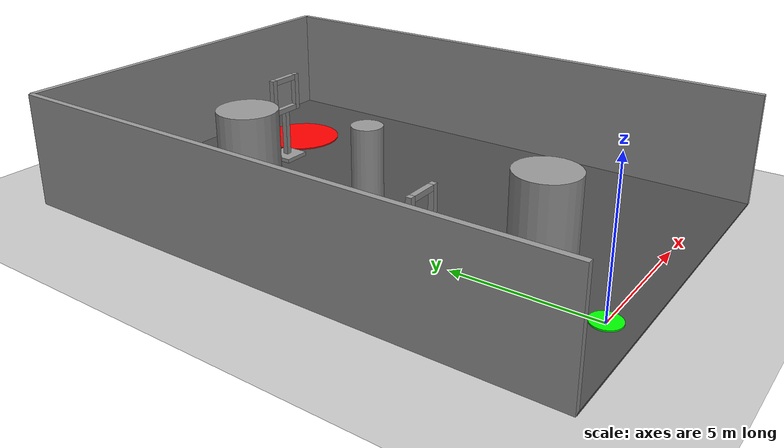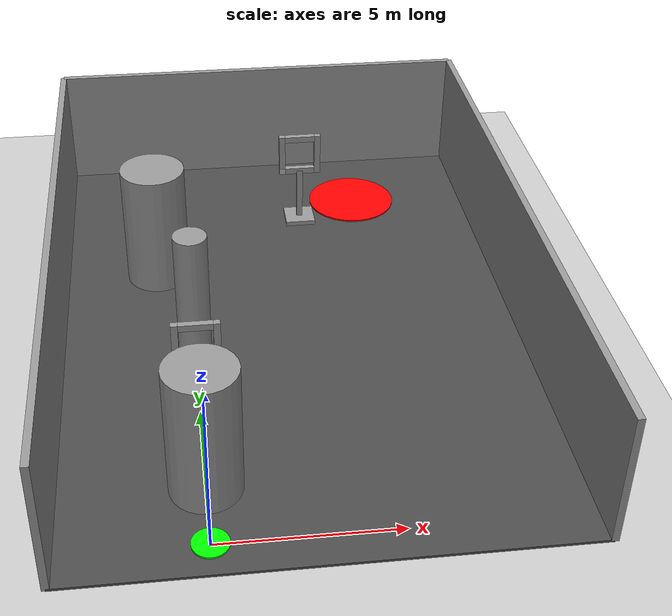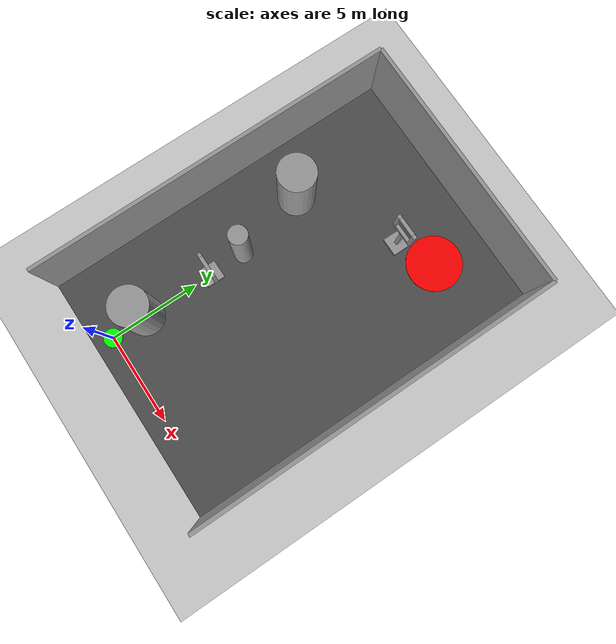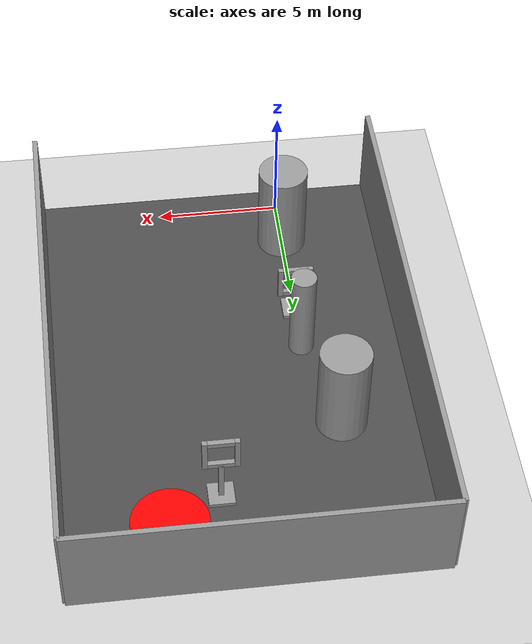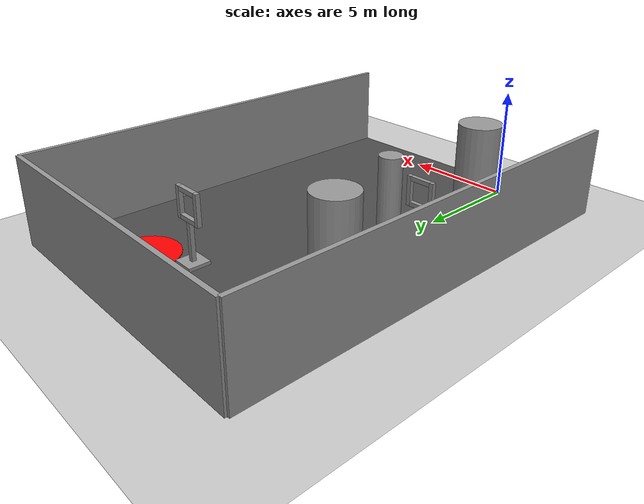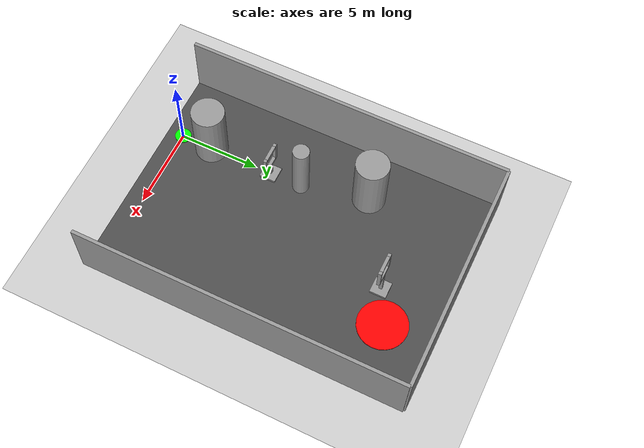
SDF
<?xml version="1.0" ?>
<sdf version="1.4">
  <world name="default">
	  <scene>
	    <shadows>0</shadows>
    </scene>
    <physics type="ode">
      <gravity>0 0 -9.81</gravity>
      <ode>
        <solver>
          <type>quick</type>
          <iters>20</iters>
          <sor>1.0</sor>
        </solver>
        <constraints>
          <cfm>0.0</cfm>
          <erp>0.2</erp>
          <contact_max_correcting_vel>100.0</contact_max_correcting_vel>
          <contact_surface_layer>0.0</contact_surface_layer>
        </constraints>
      </ode>
      <real_time_update_rate>1000</real_time_update_rate>
      <max_step_size>0.001</max_step_size>
    </physics>

    <!-- A global light source -->
    <include>
      <uri>model://sun</uri>
    </include>

    <!-- A ground plane -->
    <include>
      <uri>model://ground_plane</uri>
    </include>
    <!-- Blue floor -->
    <include>
      <uri>model://floor</uri>
      <pose> 3 9 0.0 0.0 0.0 0.0</pose>
    </include>

    <!-- Platforms -->
		<include>
      <uri>model://start_platform</uri>
			<name>start_platform</name>
      <pose> 0.0 0.0 0.0 0.0 0.0 0.0</pose>
    </include>

		<include>
      <uri>model://end_platform</uri>
			<name>end_platform</name>
      <pose> 6.0 16.0 0.0 0.0 0.0 0.0</pose>
    </include>

    <!-- External walls -->

		<include>
      <uri>model://extwall</uri>
			<name>extwall_left</name>
      <pose>-4 9.0 0.0 0 0.0 -1.57</pose>
    </include>

    <include>
      <uri>model://extwall</uri>
			<name>extwall_right</name>
      <pose>10 9.0 0.0 0 0.0 -1.57</pose>
    </include>

    <include>
      <uri>model://extwall_2</uri>
			<name>extwall_front</name>
      <pose>3 19.0 0.0 0 0.0 0.0</pose>
    </include>

    <!-- Solid obstacles -->

    <include>
      <uri>model://solobst_small</uri>
			<name>solobs_s_1</name>
      <pose>0.0 8.0 0.0 0 0.0 0</pose>
    </include>

    <include>
      <uri>model://solobst_big</uri>
			<name>solobs_b_1</name>
      <pose>0.0 2.0 0.0 0 0.0 0</pose>
    </include>

    <include>
      <uri>model://solobst_big</uri>
			<name>solobs_b_2</name>
      <pose>-1.0 12.0 0.0 0 0.0 0</pose>
    </include>

    <!--Empty obstacles with AR marker -->

		<include>
      <uri>model://empobst_1</uri>
			<name>empobst_1</name>
      <pose>0.0 6.0 0 0.0 0.0 -1.57</pose>
    </include>

		<include>
      <uri>model://empobst_2</uri>
			<name>empobst_2</name>
      <pose>4.0 15.0 0 0.0 0.0 -1.57</pose>
    </include>

  </world>
</sdf>

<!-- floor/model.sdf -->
<sdf version="1.5">
  <model name="asphalt_plane">
    <static>true</static>
    <link name="link">
      <collision name="collision">
        <geometry>
          <box>
            <size>200 200 .1</size>
          </box>
        </geometry>
      </collision>
      <visual name="visual">
        <cast_shadows>false</cast_shadows>
        <geometry>
          <box>
            <size>14 20 .1</size>
          </box>
        </geometry>
        <material>
          <script>
            <uri>model://floor/materials/scripts</uri>
            <uri>model://floor/materials/textures</uri>
            <name>vrc/asphalt</name>
          </script>
        </material>
      </visual>
    </link>
  </model>
</sdf>

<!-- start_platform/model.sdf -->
<sdf version='1.7'>
  <model name='start_platform'>
    <static>true</static>
    <link name='link_0'>
      <pose>0 0 0.05 0 -0 0</pose>
      <visual name='visual'>
        <pose>0 0 0 0 -0 0</pose>
        <geometry>
          <cylinder>
            <radius>0.5</radius>
            <length>0.1</length>
          </cylinder>
        </geometry>
        <material>
          <lighting>1</lighting>
          <shader type='pixel'>
            <normal_map>__default__</normal_map>
          </shader>
          <ambient>0 1 0 1</ambient>
          <diffuse>0 1 0 1</diffuse>
          <specular>0.01 0.01 0.01 1</specular>
          <emissive>0 0 0 1</emissive>
        </material>
        <transparency>0</transparency>
        <cast_shadows>1</cast_shadows>
      </visual>
      <collision name='collision'>
        <laser_retro>0</laser_retro>
        <max_contacts>10</max_contacts>
        <pose>0 0 0 0 -0 0</pose>
        <geometry>
          <cylinder>
            <radius>1.5</radius>
            <length>0.1</length>
          </cylinder>
        </geometry>
        <surface>
          <friction>
            <ode>
              <mu>1</mu>
              <mu2>1</mu2>
              <fdir1>0 0 0</fdir1>
              <slip1>0</slip1>
              <slip2>0</slip2>
            </ode>
            <torsional>
              <coefficient>1</coefficient>
              <patch_radius>0</patch_radius>
              <surface_radius>0</surface_radius>
              <use_patch_radius>1</use_patch_radius>
              <ode>
                <slip>0</slip>
              </ode>
            </torsional>
          </friction>
          <bounce>
            <restitution_coefficient>0</restitution_coefficient>
            <threshold>1e+06</threshold>
          </bounce>
          <contact>
            <collide_without_contact>0</collide_without_contact>
            <collide_without_contact_bitmask>1</collide_without_contact_bitmask>
            <collide_bitmask>1</collide_bitmask>
            <ode>
              <soft_cfm>0</soft_cfm>
              <soft_erp>0.2</soft_erp>
              <kp>1e+13</kp>
              <kd>1</kd>
              <max_vel>0.01</max_vel>
              <min_depth>0</min_depth>
            </ode>
            <bullet>
              <split_impulse>1</split_impulse>
              <split_impulse_penetration_threshold>-0.01</split_impulse_penetration_threshold>
              <soft_cfm>0</soft_cfm>
              <soft_erp>0.2</soft_erp>
              <kp>1e+13</kp>
              <kd>1</kd>
            </bullet>
          </contact>
        </surface>
      </collision>
    </link>
  </model>
</sdf>

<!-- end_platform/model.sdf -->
<sdf version='1.7'>
  <model name='end_platform'>
    <static>true</static>
    <link name='link_0'>
      <pose>0 0 0.05 0 -0 0</pose>
      <visual name='visual'>
        <pose>0 0 0 0 -0 0</pose>
        <geometry>
          <cylinder>
            <radius>1.5</radius>
            <length>0.1</length>
          </cylinder>
        </geometry>
        <material>
          <lighting>1</lighting>
          <shader type='pixel'>
            <normal_map>__default__</normal_map>
          </shader>
          <ambient>1 0 0 1</ambient>
          <diffuse>1 0 0 1</diffuse>
          <specular>0.01 0.01 0.01 1</specular>
          <emissive>0 0 0 1</emissive>
        </material>
        <transparency>0</transparency>
        <cast_shadows>1</cast_shadows>
      </visual>
      <collision name='collision'>
        <laser_retro>0</laser_retro>
        <max_contacts>10</max_contacts>
        <pose>0 0 0 0 -0 0</pose>
        <geometry>
          <cylinder>
            <radius>1.5</radius>
            <length>0.1</length>
          </cylinder>
        </geometry>
        <surface>
          <friction>
            <ode>
              <mu>1</mu>
              <mu2>1</mu2>
              <fdir1>0 0 0</fdir1>
              <slip1>0</slip1>
              <slip2>0</slip2>
            </ode>
            <torsional>
              <coefficient>1</coefficient>
              <patch_radius>0</patch_radius>
              <surface_radius>0</surface_radius>
              <use_patch_radius>1</use_patch_radius>
              <ode>
                <slip>0</slip>
              </ode>
            </torsional>
          </friction>
          <bounce>
            <restitution_coefficient>0</restitution_coefficient>
            <threshold>1e+06</threshold>
          </bounce>
          <contact>
            <collide_without_contact>0</collide_without_contact>
            <collide_without_contact_bitmask>1</collide_without_contact_bitmask>
            <collide_bitmask>1</collide_bitmask>
            <ode>
              <soft_cfm>0</soft_cfm>
              <soft_erp>0.2</soft_erp>
              <kp>1e+13</kp>
              <kd>1</kd>
              <max_vel>0.01</max_vel>
              <min_depth>0</min_depth>
            </ode>
            <bullet>
              <split_impulse>1</split_impulse>
              <split_impulse_penetration_threshold>-0.01</split_impulse_penetration_threshold>
              <soft_cfm>0</soft_cfm>
              <soft_erp>0.2</soft_erp>
              <kp>1e+13</kp>
              <kd>1</kd>
            </bullet>
          </contact>
        </surface>
      </collision>
    </link>
  </model>
</sdf>

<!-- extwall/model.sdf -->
<sdf version="1.5">
  <model name="grey_wall">
    <static>true</static>
    <link name="link">
      <pose>0 0 2 0 0 0</pose>
      <collision name="collision">
        <geometry>
          <box>
            <size>20.0 0.2 4</size>
          </box>
        </geometry>
      </collision>
      <visual name="visual">
        <cast_shadows>false</cast_shadows>
        <geometry>
          <box>
            <size>20.0 0.2 4</size>
          </box>
        </geometry>
        <material>
          <script>
            <uri>model://extwall/materials/scripts</uri>
            <uri>model://extwall/materials/textures</uri>
            <name>vrc/grey_wall</name>
          </script>
        </material>
      </visual>
    </link>
  </model>
</sdf>

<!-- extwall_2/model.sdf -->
<sdf version="1.5">
  <model name="grey_wall">
    <static>true</static>
    <link name="link">
      <pose>0 0 2 0 0 0</pose>
      <collision name="collision">
        <geometry>
          <box>
            <size>14 0.2 4</size>
          </box>
        </geometry>
      </collision>
      <visual name="visual">
        <cast_shadows>false</cast_shadows>
        <geometry>
          <box>
            <size>14 0.2 4</size>
          </box>
        </geometry>
        <material>
          <script>
            <uri>model://extwall/materials/scripts</uri>
            <uri>model://extwall/materials/textures</uri>
            <name>vrc/grey_wall</name>
          </script>
        </material>
      </visual>
    </link>
  </model>
</sdf>

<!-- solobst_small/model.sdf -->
<sdf version='1.7'>
  <model name='solobst_small'>
    <static>true</static>
    <link name='link_0'>
      <pose>0 -0 2 0 -0 0</pose>
      <visual name='visual'>
        <pose>0 0 0 0 -0 0</pose>
        <geometry>
          <cylinder>
            <radius>0.5</radius>
            <length>4</length>
          </cylinder>
        </geometry>
        <material>
          <lighting>1</lighting>
          <script>
            <uri>file://media/materials/scripts/gazebo.material</uri>
            <name>Gazebo/Grey</name>
          </script>
          <shader type='pixel'>
            <normal_map>__default__</normal_map>
          </shader>
          <ambient>0.3 0.3 0.3 1</ambient>
          <diffuse>0.7 0.7 0.7 1</diffuse>
          <specular>0.01 0.01 0.01 1</specular>
          <emissive>0 0 0 1</emissive>
        </material>
        <transparency>0</transparency>
        <cast_shadows>1</cast_shadows>
      </visual>
      <collision name='collision'>
        <laser_retro>0</laser_retro>
        <max_contacts>10</max_contacts>
        <pose>0 0 0 0 -0 0</pose>
        <geometry>
          <cylinder>
            <radius>0.5</radius>
            <length>4</length>
          </cylinder>
        </geometry>
        <surface>
          <friction>
            <ode>
              <mu>1</mu>
              <mu2>1</mu2>
              <fdir1>0 0 0</fdir1>
              <slip1>0</slip1>
              <slip2>0</slip2>
            </ode>
            <torsional>
              <coefficient>1</coefficient>
              <patch_radius>0</patch_radius>
              <surface_radius>0</surface_radius>
              <use_patch_radius>1</use_patch_radius>
              <ode>
                <slip>0</slip>
              </ode>
            </torsional>
          </friction>
          <bounce>
            <restitution_coefficient>0</restitution_coefficient>
            <threshold>1e+06</threshold>
          </bounce>
          <contact>
            <collide_without_contact>0</collide_without_contact>
            <collide_without_contact_bitmask>1</collide_without_contact_bitmask>
            <collide_bitmask>1</collide_bitmask>
            <ode>
              <soft_cfm>0</soft_cfm>
              <soft_erp>0.2</soft_erp>
              <kp>1e+13</kp>
              <kd>1</kd>
              <max_vel>0.01</max_vel>
              <min_depth>0</min_depth>
            </ode>
            <bullet>
              <split_impulse>1</split_impulse>
              <split_impulse_penetration_threshold>-0.01</split_impulse_penetration_threshold>
              <soft_cfm>0</soft_cfm>
              <soft_erp>0.2</soft_erp>
              <kp>1e+13</kp>
              <kd>1</kd>
            </bullet>
          </contact>
        </surface>
      </collision>
    </link>
  </model>
</sdf>

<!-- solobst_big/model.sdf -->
<sdf version='1.7'>
  <model name='solobst_big'>
    <static>true</static>
    <link name='link_0'>
      <pose>0 -0 2 0 -0 0</pose>
      <visual name='visual'>
        <pose>0 0 0 0 -0 0</pose>
        <geometry>
          <cylinder>
            <radius>1.0</radius>
            <length>4</length>
          </cylinder>
        </geometry>
        <material>
          <lighting>1</lighting>
          <script>
            <uri>file://media/materials/scripts/gazebo.material</uri>
            <name>Gazebo/Grey</name>
          </script>
          <shader type='pixel'>
            <normal_map>__default__</normal_map>
          </shader>
          <ambient>0.3 0.3 0.3 1</ambient>
          <diffuse>0.7 0.7 0.7 1</diffuse>
          <specular>0.01 0.01 0.01 1</specular>
          <emissive>0 0 0 1</emissive>
        </material>
        <transparency>0</transparency>
        <cast_shadows>1</cast_shadows>
      </visual>
      <collision name='collision'>
        <laser_retro>0</laser_retro>
        <max_contacts>10</max_contacts>
        <pose>0 0 0 0 -0 0</pose>
        <geometry>
          <cylinder>
            <radius>1.0</radius>
            <length>4</length>
          </cylinder>
        </geometry>
        <surface>
          <friction>
            <ode>
              <mu>1</mu>
              <mu2>1</mu2>
              <fdir1>0 0 0</fdir1>
              <slip1>0</slip1>
              <slip2>0</slip2>
            </ode>
            <torsional>
              <coefficient>1</coefficient>
              <patch_radius>0</patch_radius>
              <surface_radius>0</surface_radius>
              <use_patch_radius>1</use_patch_radius>
              <ode>
                <slip>0</slip>
              </ode>
            </torsional>
          </friction>
          <bounce>
            <restitution_coefficient>0</restitution_coefficient>
            <threshold>1e+06</threshold>
          </bounce>
          <contact>
            <collide_without_contact>0</collide_without_contact>
            <collide_without_contact_bitmask>1</collide_without_contact_bitmask>
            <collide_bitmask>1</collide_bitmask>
            <ode>
              <soft_cfm>0</soft_cfm>
              <soft_erp>0.2</soft_erp>
              <kp>1e+13</kp>
              <kd>1</kd>
              <max_vel>0.01</max_vel>
              <min_depth>0</min_depth>
            </ode>
            <bullet>
              <split_impulse>1</split_impulse>
              <split_impulse_penetration_threshold>-0.01</split_impulse_penetration_threshold>
              <soft_cfm>0</soft_cfm>
              <soft_erp>0.2</soft_erp>
              <kp>1e+13</kp>
              <kd>1</kd>
            </bullet>
          </contact>
        </surface>
      </collision>
    </link>
  </model>
</sdf>

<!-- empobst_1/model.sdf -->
<sdf version='1.7'>
  <model name='empobst_1'>
    <static>true</static>

    <include>
      <uri>model://marker26_8cm_massless</uri>
      <pose>0.1 -0.6 1.1 0.0 1.5707 3.141592</pose>
    </include>

    <joint name='link_1_marker_joint' type='fixed'>
      <parent>link_1</parent>
      <child>marker26_8cm_massless::link</child>
      <pose>0 0 0 0 0 0</pose>
      <physics>
        <ode>
          <limit>
            <cfm>0</cfm>
            <erp>0.2</erp>
          </limit>
          <suspension>
            <cfm>0</cfm>
            <erp>0.2</erp>
          </suspension>
        </ode>
      </physics>
    </joint>

    <link name='link_base'>
      <inertial>
        <mass>100</mass>
        <inertia>
          <ixx>0.166667</ixx>
          <ixy>0</ixy>
          <ixz>0</ixz>
          <iyy>0.166667</iyy>
          <iyz>0</iyz>
          <izz>0.166667</izz>
        </inertia>
        <pose>0 0 0 0 -0 0</pose>
      </inertial>
      <pose>0 0 0.1 0 -0 0</pose>
      <gravity>1</gravity>
      <self_collide>0</self_collide>
      <kinematic>0</kinematic>
      <enable_wind>0</enable_wind>
      <visual name='visual'>
        <pose>0 0 0 0 -0 0</pose>
        <geometry>
          <box>
            <size>1 1 0.2</size>
          </box>
        </geometry>
        <material>
          <lighting>1</lighting>
          <script>
            <uri>file://media/materials/scripts/gazebo.material</uri>
            <name>Gazebo/Grey</name>
          </script>
          <shader type='pixel'>
            <normal_map>__default__</normal_map>
          </shader>
          <ambient>0.3 0.3 0.3 1</ambient>
          <diffuse>0.7 0.7 0.7 1</diffuse>
          <specular>0.01 0.01 0.01 1</specular>
          <emissive>0 0 0 1</emissive>
        </material>
        <transparency>0</transparency>
        <cast_shadows>1</cast_shadows>
      </visual>
      <collision name='collision'>
        <laser_retro>0</laser_retro>
        <max_contacts>10</max_contacts>
        <pose>0 0 0 0 -0 0</pose>
        <geometry>
          <box>
            <size>1 1 0.2</size>
          </box>
        </geometry>
        <surface>
          <friction>
            <ode>
              <mu>1</mu>
              <mu2>1</mu2>
              <fdir1>0 0 0</fdir1>
              <slip1>0</slip1>
              <slip2>0</slip2>
            </ode>
            <torsional>
              <coefficient>1</coefficient>
              <patch_radius>0</patch_radius>
              <surface_radius>0</surface_radius>
              <use_patch_radius>1</use_patch_radius>
              <ode>
                <slip>0</slip>
              </ode>
            </torsional>
          </friction>
          <bounce>
            <restitution_coefficient>0</restitution_coefficient>
            <threshold>1e+06</threshold>
          </bounce>
          <contact>
            <collide_without_contact>0</collide_without_contact>
            <collide_without_contact_bitmask>1</collide_without_contact_bitmask>
            <collide_bitmask>1</collide_bitmask>
            <ode>
              <soft_cfm>0</soft_cfm>
              <soft_erp>0.2</soft_erp>
              <kp>1e+13</kp>
              <kd>1</kd>
              <max_vel>0.01</max_vel>
              <min_depth>0</min_depth>
            </ode>
            <bullet>
              <split_impulse>1</split_impulse>
              <split_impulse_penetration_threshold>-0.01</split_impulse_penetration_threshold>
              <soft_cfm>0</soft_cfm>
              <soft_erp>0.2</soft_erp>
              <kp>1e+13</kp>
              <kd>1</kd>
            </bullet>
          </contact>
        </surface>
      </collision>
    </link>

    <link name='link_0'>
      <pose>0 0 0.5 0 -0 0</pose>
      <visual name='visual'>
        <pose>0 0 0 0 -0 0</pose>
        <geometry>
          <box>
            <size>0.2 0.2 1</size>
          </box>
        </geometry>
        <material>
          <lighting>1</lighting>
          <script>
            <uri>file://media/materials/scripts/gazebo.material</uri>
            <name>Gazebo/Grey</name>
          </script>
          <shader type='pixel'>
            <normal_map>__default__</normal_map>
          </shader>
          <ambient>0.3 0.3 0.3 1</ambient>
          <diffuse>0.7 0.7 0.7 1</diffuse>
          <specular>0.01 0.01 0.01 1</specular>
          <emissive>0 0 0 1</emissive>
        </material>
        <transparency>0</transparency>
        <cast_shadows>1</cast_shadows>
      </visual>
      <collision name='collision'>
        <laser_retro>0</laser_retro>
        <max_contacts>10</max_contacts>
        <pose>0 0 0 0 -0 0</pose>
        <geometry>
          <box>
            <size>0.2 0.2 1</size>
          </box>
        </geometry>
        <surface>
          <friction>
            <ode>
              <mu>1</mu>
              <mu2>1</mu2>
              <fdir1>0 0 0</fdir1>
              <slip1>0</slip1>
              <slip2>0</slip2>
            </ode>
            <torsional>
              <coefficient>1</coefficient>
              <patch_radius>0</patch_radius>
              <surface_radius>0</surface_radius>
              <use_patch_radius>1</use_patch_radius>
              <ode>
                <slip>0</slip>
              </ode>
            </torsional>
          </friction>
          <bounce>
            <restitution_coefficient>0</restitution_coefficient>
            <threshold>1e+06</threshold>
          </bounce>
          <contact>
            <collide_without_contact>0</collide_without_contact>
            <collide_without_contact_bitmask>1</collide_without_contact_bitmask>
            <collide_bitmask>1</collide_bitmask>
            <ode>
              <soft_cfm>0</soft_cfm>
              <soft_erp>0.2</soft_erp>
              <kp>1e+13</kp>
              <kd>1</kd>
              <max_vel>0.01</max_vel>
              <min_depth>0</min_depth>
            </ode>
            <bullet>
              <split_impulse>1</split_impulse>
              <split_impulse_penetration_threshold>-0.01</split_impulse_penetration_threshold>
              <soft_cfm>0</soft_cfm>
              <soft_erp>0.2</soft_erp>
              <kp>1e+13</kp>
              <kd>1</kd>
            </bullet>
          </contact>
        </surface>
      </collision>
    </link>

    <link name='link_1'>
      <pose>0 0 1.1 0 -0 0</pose>
      <visual name='visual'>
        <pose>0 0 0 0 -0 0</pose>
        <geometry>
          <box>
            <size>0.2 1 0.2</size>
          </box>
        </geometry>
        <material>
          <lighting>1</lighting>
          <script>
            <uri>file://media/materials/scripts/gazebo.material</uri>
            <name>Gazebo/Grey</name>
          </script>
          <shader type='pixel'>
            <normal_map>__default__</normal_map>
          </shader>
          <ambient>0.3 0.3 0.3 1</ambient>
          <diffuse>0.7 0.7 0.7 1</diffuse>
          <specular>0.01 0.01 0.01 1</specular>
          <emissive>0 0 0 1</emissive>
        </material>
        <transparency>0</transparency>
        <cast_shadows>1</cast_shadows>
      </visual>
      <collision name='collision'>
        <laser_retro>0</laser_retro>
        <max_contacts>10</max_contacts>
        <pose>0 0 0 0 -0 0</pose>
        <geometry>
          <box>
            <size>0.2 1 0.2</size>
          </box>
        </geometry>
        <surface>
          <friction>
            <ode>
              <mu>1</mu>
              <mu2>1</mu2>
              <fdir1>0 0 0</fdir1>
              <slip1>0</slip1>
              <slip2>0</slip2>
            </ode>
            <torsional>
              <coefficient>1</coefficient>
              <patch_radius>0</patch_radius>
              <surface_radius>0</surface_radius>
              <use_patch_radius>1</use_patch_radius>
              <ode>
                <slip>0</slip>
              </ode>
            </torsional>
          </friction>
          <bounce>
            <restitution_coefficient>0</restitution_coefficient>
            <threshold>1e+06</threshold>
          </bounce>
          <contact>
            <collide_without_contact>0</collide_without_contact>
            <collide_without_contact_bitmask>1</collide_without_contact_bitmask>
            <collide_bitmask>1</collide_bitmask>
            <ode>
              <soft_cfm>0</soft_cfm>
              <soft_erp>0.2</soft_erp>
              <kp>1e+13</kp>
              <kd>1</kd>
              <max_vel>0.01</max_vel>
              <min_depth>0</min_depth>
            </ode>
            <bullet>
              <split_impulse>1</split_impulse>
              <split_impulse_penetration_threshold>-0.01</split_impulse_penetration_threshold>
              <soft_cfm>0</soft_cfm>
              <soft_erp>0.2</soft_erp>
              <kp>1e+13</kp>
              <kd>1</kd>
            </bullet>
          </contact>
        </surface>
      </collision>
    </link>

    <link name='link_2'>
      <pose>0 0 2.3 0 -0 0</pose>
      <visual name='visual'>
        <pose>0 0 0 0 -0 0</pose>
        <geometry>
          <box>
            <size>0.2 1 0.2</size>
          </box>
        </geometry>
        <material>
          <lighting>1</lighting>
          <script>
            <uri>file://media/materials/scripts/gazebo.material</uri>
            <name>Gazebo/Grey</name>
          </script>
          <shader type='pixel'>
            <normal_map>__default__</normal_map>
          </shader>
          <ambient>0.3 0.3 0.3 1</ambient>
          <diffuse>0.7 0.7 0.7 1</diffuse>
          <specular>0.01 0.01 0.01 1</specular>
          <emissive>0 0 0 1</emissive>
        </material>
        <transparency>0</transparency>
        <cast_shadows>1</cast_shadows>
      </visual>
      <collision name='collision'>
        <laser_retro>0</laser_retro>
        <max_contacts>10</max_contacts>
        <pose>0 0 0 0 -0 0</pose>
        <geometry>
          <box>
            <size>0.2 1 0.2</size>
          </box>
        </geometry>
        <surface>
          <friction>
            <ode>
              <mu>1</mu>
              <mu2>1</mu2>
              <fdir1>0 0 0</fdir1>
              <slip1>0</slip1>
              <slip2>0</slip2>
            </ode>
            <torsional>
              <coefficient>1</coefficient>
              <patch_radius>0</patch_radius>
              <surface_radius>0</surface_radius>
              <use_patch_radius>1</use_patch_radius>
              <ode>
                <slip>0</slip>
              </ode>
            </torsional>
          </friction>
          <bounce>
            <restitution_coefficient>0</restitution_coefficient>
            <threshold>1e+06</threshold>
          </bounce>
          <contact>
            <collide_without_contact>0</collide_without_contact>
            <collide_without_contact_bitmask>1</collide_without_contact_bitmask>
            <collide_bitmask>1</collide_bitmask>
            <ode>
              <soft_cfm>0</soft_cfm>
              <soft_erp>0.2</soft_erp>
              <kp>1e+13</kp>
              <kd>1</kd>
              <max_vel>0.01</max_vel>
              <min_depth>0</min_depth>
            </ode>
            <bullet>
              <split_impulse>1</split_impulse>
              <split_impulse_penetration_threshold>-0.01</split_impulse_penetration_threshold>
              <soft_cfm>0</soft_cfm>
              <soft_erp>0.2</soft_erp>
              <kp>1e+13</kp>
              <kd>1</kd>
            </bullet>
          </contact>
        </surface>
      </collision>
    </link>

    <link name='link_3'>
      <pose>0 0.6 1.7 0 -0 0</pose>
      <visual name='visual'>
        <pose>0 0 0 0 -0 0</pose>
        <geometry>
          <box>
            <size>0.2 0.2 1.4</size>
          </box>
        </geometry>
        <material>
          <lighting>1</lighting>
          <script>
            <uri>file://media/materials/scripts/gazebo.material</uri>
            <name>Gazebo/Grey</name>
          </script>
          <shader type='pixel'>
            <normal_map>__default__</normal_map>
          </shader>
          <ambient>0.3 0.3 0.3 1</ambient>
          <diffuse>0.7 0.7 0.7 1</diffuse>
          <specular>0.01 0.01 0.01 1</specular>
          <emissive>0 0 0 1</emissive>
        </material>
        <transparency>0</transparency>
        <cast_shadows>1</cast_shadows>
      </visual>
      <collision name='collision'>
        <laser_retro>0</laser_retro>
        <max_contacts>10</max_contacts>
        <pose>0 0 0 0 -0 0</pose>
        <geometry>
          <box>
            <size>0.2 0.2 1.4</size>
          </box>
        </geometry>
        <surface>
          <friction>
            <ode>
              <mu>1</mu>
              <mu2>1</mu2>
              <fdir1>0 0 0</fdir1>
              <slip1>0</slip1>
              <slip2>0</slip2>
            </ode>
            <torsional>
              <coefficient>1</coefficient>
              <patch_radius>0</patch_radius>
              <surface_radius>0</surface_radius>
              <use_patch_radius>1</use_patch_radius>
              <ode>
                <slip>0</slip>
              </ode>
            </torsional>
          </friction>
          <bounce>
            <restitution_coefficient>0</restitution_coefficient>
            <threshold>1e+06</threshold>
          </bounce>
          <contact>
            <collide_without_contact>0</collide_without_contact>
            <collide_without_contact_bitmask>1</collide_without_contact_bitmask>
            <collide_bitmask>1</collide_bitmask>
            <ode>
              <soft_cfm>0</soft_cfm>
              <soft_erp>0.2</soft_erp>
              <kp>1e+13</kp>
              <kd>1</kd>
              <max_vel>0.01</max_vel>
              <min_depth>0</min_depth>
            </ode>
            <bullet>
              <split_impulse>1</split_impulse>
              <split_impulse_penetration_threshold>-0.01</split_impulse_penetration_threshold>
              <soft_cfm>0</soft_cfm>
              <soft_erp>0.2</soft_erp>
              <kp>1e+13</kp>
              <kd>1</kd>
            </bullet>
          </contact>
        </surface>
      </collision>
    </link>

    <link name='link_4'>
      <pose>0 -0.6 1.7 0 -0 0</pose>
      <visual name='visual'>
        <pose>0 0 0 0 -0 0</pose>
        <geometry>
          <box>
            <size>0.2 0.2 1.4</size>
          </box>
        </geometry>
        <material>
          <lighting>1</lighting>
          <script>
            <uri>file://media/materials/scripts/gazebo.material</uri>
            <name>Gazebo/Grey</name>
          </script>
          <shader type='pixel'>
            <normal_map>__default__</normal_map>
          </shader>
          <ambient>0.3 0.3 0.3 1</ambient>
          <diffuse>0.7 0.7 0.7 1</diffuse>
          <specular>0.01 0.01 0.01 1</specular>
          <emissive>0 0 0 1</emissive>
        </material>
        <transparency>0</transparency>
        <cast_shadows>1</cast_shadows>
      </visual>
      <collision name='collision'>
        <laser_retro>0</laser_retro>
        <max_contacts>10</max_contacts>
        <pose>0 0 0 0 -0 0</pose>
        <geometry>
          <box>
            <size>0.2 0.2 1.4</size>
          </box>
        </geometry>
        <surface>
          <friction>
            <ode>
              <mu>1</mu>
              <mu2>1</mu2>
              <fdir1>0 0 0</fdir1>
              <slip1>0</slip1>
              <slip2>0</slip2>
            </ode>
            <torsional>
              <coefficient>1</coefficient>
              <patch_radius>0</patch_radius>
              <surface_radius>0</surface_radius>
              <use_patch_radius>1</use_patch_radius>
              <ode>
                <slip>0</slip>
              </ode>
            </torsional>
          </friction>
          <bounce>
            <restitution_coefficient>0</restitution_coefficient>
            <threshold>1e+06</threshold>
          </bounce>
          <contact>
            <collide_without_contact>0</collide_without_contact>
            <collide_without_contact_bitmask>1</collide_without_contact_bitmask>
            <collide_bitmask>1</collide_bitmask>
            <ode>
              <soft_cfm>0</soft_cfm>
              <soft_erp>0.2</soft_erp>
              <kp>1e+13</kp>
              <kd>1</kd>
              <max_vel>0.01</max_vel>
              <min_depth>0</min_depth>
            </ode>
            <bullet>
              <split_impulse>1</split_impulse>
              <split_impulse_penetration_threshold>-0.01</split_impulse_penetration_threshold>
              <soft_cfm>0</soft_cfm>
              <soft_erp>0.2</soft_erp>
              <kp>1e+13</kp>
              <kd>1</kd>
            </bullet>
          </contact>
        </surface>
      </collision>
    </link>

    <joint name='link_base_JOINT_0' type='fixed'>
      <parent>link_base</parent>
      <child>link_0</child>
      <pose>0 0 0 0 -0 0</pose>
      <physics>
        <ode>
          <limit>
            <cfm>0</cfm>
            <erp>0.2</erp>
          </limit>
          <suspension>
            <cfm>0</cfm>
            <erp>0.2</erp>
          </suspension>
        </ode>
      </physics>
    </joint>

    <joint name='link_0_JOINT_0' type='fixed'>
      <parent>link_0</parent>
      <child>link_1</child>
      <pose>0 0 0 0 -0 0</pose>
      <physics>
        <ode>
          <limit>
            <cfm>0</cfm>
            <erp>0.2</erp>
          </limit>
          <suspension>
            <cfm>0</cfm>
            <erp>0.2</erp>
          </suspension>
        </ode>
      </physics>
    </joint>

    <joint name='link_1_JOINT_1' type='fixed'>
      <parent>link_1</parent>
      <child>link_2</child>
      <pose>0 0 0 0 -0 0</pose>
      <physics>
        <ode>
          <limit>
            <cfm>0</cfm>
            <erp>0.2</erp>
          </limit>
          <suspension>
            <cfm>0</cfm>
            <erp>0.2</erp>
          </suspension>
        </ode>
      </physics>
    </joint>

    <joint name='link_1_JOINT_2' type='fixed'>
      <parent>link_1</parent>
      <child>link_3</child>
      <pose>0 0 0 0 -0 0</pose>
      <physics>
        <ode>
          <limit>
            <cfm>0</cfm>
            <erp>0.2</erp>
          </limit>
          <suspension>
            <cfm>0</cfm>
            <erp>0.2</erp>
          </suspension>
        </ode>
      </physics>
    </joint>

    <joint name='link_1_JOINT_3' type='fixed'>
      <parent>link_1</parent>
      <child>link_4</child>
      <pose>0 0 0 0 -0 0</pose>
      <physics>
        <ode>
          <limit>
            <cfm>0</cfm>
            <erp>0.2</erp>
          </limit>
          <suspension>
            <cfm>0</cfm>
            <erp>0.2</erp>
          </suspension>
        </ode>
      </physics>
    </joint>

    <allow_auto_disable>1</allow_auto_disable>
  </model>
</sdf>

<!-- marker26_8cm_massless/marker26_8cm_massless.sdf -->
<sdf version="1.4">
  <model name="marker26_8cm">
    <static>true</static>
    <link name="marker">
      <visual name="visual">
        <geometry>
          <box>
            <size>0.2 0.2 0.001</size>
            <!-- SIZE OF THE MARKER + MARGIN -->
          </box>
        </geometry>
        <material>
          <script>
	          <uri>model://marker26_8cm_massless/material/scripts</uri>
	          <uri>model://marker26_8cm_massless/material/textures</uri>
            <name>Aruco/marker26_8cm</name>
          </script>
        </material>
      </visual>
      <collision name="collision">
        <geometry>
          <box>
            <size>0.2 0.2 0.02</size>
            <!-- SIZE OF THE MARKER + MARGIN -->
          </box>
        </geometry>
      </collision>
    </link>
  </model>
</sdf>

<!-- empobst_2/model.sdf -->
<sdf version='1.7'>
  <model name='empobst_2'>
    <static>true</static>

    <include>
      <uri>model://marker26_8cm_massless</uri>
      <pose>0.1 -0.6 2.0 0.0 1.5707 3.141592</pose>
    </include>

    <joint name='link_1_marker_joint' type='fixed'>
      <parent>link_1</parent>
      <child>marker26_8cm_massless::link</child>
      <pose>0 0 0 0 0 0</pose>
      <physics>
        <ode>
          <limit>
            <cfm>0</cfm>
            <erp>0.2</erp>
          </limit>
          <suspension>
            <cfm>0</cfm>
            <erp>0.2</erp>
          </suspension>
        </ode>
      </physics>
    </joint>

    <link name='link_base'>
      <pose>0 0 0.1 0 -0 0</pose>
      <visual name='visual'>
        <pose>0 0 0 0 -0 0</pose>
        <geometry>
          <box>
            <size>1 1 0.2</size>
          </box>
        </geometry>
        <material>
          <lighting>1</lighting>
          <script>
            <uri>file://media/materials/scripts/gazebo.material</uri>
            <name>Gazebo/Grey</name>
          </script>
          <shader type='pixel'>
            <normal_map>__default__</normal_map>
          </shader>
          <ambient>0.3 0.3 0.3 1</ambient>
          <diffuse>0.7 0.7 0.7 1</diffuse>
          <specular>0.01 0.01 0.01 1</specular>
          <emissive>0 0 0 1</emissive>
        </material>
        <transparency>0</transparency>
        <cast_shadows>1</cast_shadows>
      </visual>
      <collision name='collision'>
        <laser_retro>0</laser_retro>
        <max_contacts>10</max_contacts>
        <pose>0 0 0 0 -0 0</pose>
        <geometry>
          <box>
            <size>1 1 0.2</size>
          </box>
        </geometry>
        <surface>
          <friction>
            <ode>
              <mu>1</mu>
              <mu2>1</mu2>
              <fdir1>0 0 0</fdir1>
              <slip1>0</slip1>
              <slip2>0</slip2>
            </ode>
            <torsional>
              <coefficient>1</coefficient>
              <patch_radius>0</patch_radius>
              <surface_radius>0</surface_radius>
              <use_patch_radius>1</use_patch_radius>
              <ode>
                <slip>0</slip>
              </ode>
            </torsional>
          </friction>
          <bounce>
            <restitution_coefficient>0</restitution_coefficient>
            <threshold>1e+06</threshold>
          </bounce>
          <contact>
            <collide_without_contact>0</collide_without_contact>
            <collide_without_contact_bitmask>1</collide_without_contact_bitmask>
            <collide_bitmask>1</collide_bitmask>
            <ode>
              <soft_cfm>0</soft_cfm>
              <soft_erp>0.2</soft_erp>
              <kp>1e+13</kp>
              <kd>1</kd>
              <max_vel>0.01</max_vel>
              <min_depth>0</min_depth>
            </ode>
            <bullet>
              <split_impulse>1</split_impulse>
              <split_impulse_penetration_threshold>-0.01</split_impulse_penetration_threshold>
              <soft_cfm>0</soft_cfm>
              <soft_erp>0.2</soft_erp>
              <kp>1e+13</kp>
              <kd>1</kd>
            </bullet>
          </contact>
        </surface>
      </collision>
    </link>

    <link name='link_0'>
      <pose>0 0 1 0 -0 0</pose>
      <visual name='visual'>
        <pose>0 0 0 0 -0 0</pose>
        <geometry>
          <box>
            <size>0.2 0.2 2</size>
          </box>
        </geometry>
        <material>
          <lighting>1</lighting>
          <script>
            <uri>file://media/materials/scripts/gazebo.material</uri>
            <name>Gazebo/Grey</name>
          </script>
          <shader type='pixel'>
            <normal_map>__default__</normal_map>
          </shader>
          <ambient>0.3 0.3 0.3 1</ambient>
          <diffuse>0.7 0.7 0.7 1</diffuse>
          <specular>0.01 0.01 0.01 1</specular>
          <emissive>0 0 0 1</emissive>
        </material>
        <transparency>0</transparency>
        <cast_shadows>1</cast_shadows>
      </visual>
      <collision name='collision'>
        <laser_retro>0</laser_retro>
        <max_contacts>10</max_contacts>
        <pose>0 0 0 0 -0 0</pose>
        <geometry>
          <box>
            <size>0.2 0.2 2</size>
          </box>
        </geometry>
        <surface>
          <friction>
            <ode>
              <mu>1</mu>
              <mu2>1</mu2>
              <fdir1>0 0 0</fdir1>
              <slip1>0</slip1>
              <slip2>0</slip2>
            </ode>
            <torsional>
              <coefficient>1</coefficient>
              <patch_radius>0</patch_radius>
              <surface_radius>0</surface_radius>
              <use_patch_radius>1</use_patch_radius>
              <ode>
                <slip>0</slip>
              </ode>
            </torsional>
          </friction>
          <bounce>
            <restitution_coefficient>0</restitution_coefficient>
            <threshold>1e+06</threshold>
          </bounce>
          <contact>
            <collide_without_contact>0</collide_without_contact>
            <collide_without_contact_bitmask>1</collide_without_contact_bitmask>
            <collide_bitmask>1</collide_bitmask>
            <ode>
              <soft_cfm>0</soft_cfm>
              <soft_erp>0.2</soft_erp>
              <kp>1e+13</kp>
              <kd>1</kd>
              <max_vel>0.01</max_vel>
              <min_depth>0</min_depth>
            </ode>
            <bullet>
              <split_impulse>1</split_impulse>
              <split_impulse_penetration_threshold>-0.01</split_impulse_penetration_threshold>
              <soft_cfm>0</soft_cfm>
              <soft_erp>0.2</soft_erp>
              <kp>1e+13</kp>
              <kd>1</kd>
            </bullet>
          </contact>
        </surface>
      </collision>
    </link>

    <link name='link_1'>
      <pose>0 0 2 0 -0 0</pose>
      <visual name='visual'>
        <pose>0 0 0 0 -0 0</pose>
        <geometry>
          <box>
            <size>0.2 1 0.2</size>
          </box>
        </geometry>
        <material>
          <lighting>1</lighting>
          <script>
            <uri>file://media/materials/scripts/gazebo.material</uri>
            <name>Gazebo/Grey</name>
          </script>
          <shader type='pixel'>
            <normal_map>__default__</normal_map>
          </shader>
          <ambient>0.3 0.3 0.3 1</ambient>
          <diffuse>0.7 0.7 0.7 1</diffuse>
          <specular>0.01 0.01 0.01 1</specular>
          <emissive>0 0 0 1</emissive>
        </material>
        <transparency>0</transparency>
        <cast_shadows>1</cast_shadows>
      </visual>
      <collision name='collision'>
        <laser_retro>0</laser_retro>
        <max_contacts>10</max_contacts>
        <pose>0 0 0 0 -0 0</pose>
        <geometry>
          <box>
            <size>0.2 1 0.2</size>
          </box>
        </geometry>
        <surface>
          <friction>
            <ode>
              <mu>1</mu>
              <mu2>1</mu2>
              <fdir1>0 0 0</fdir1>
              <slip1>0</slip1>
              <slip2>0</slip2>
            </ode>
            <torsional>
              <coefficient>1</coefficient>
              <patch_radius>0</patch_radius>
              <surface_radius>0</surface_radius>
              <use_patch_radius>1</use_patch_radius>
              <ode>
                <slip>0</slip>
              </ode>
            </torsional>
          </friction>
          <bounce>
            <restitution_coefficient>0</restitution_coefficient>
            <threshold>1e+06</threshold>
          </bounce>
          <contact>
            <collide_without_contact>0</collide_without_contact>
            <collide_without_contact_bitmask>1</collide_without_contact_bitmask>
            <collide_bitmask>1</collide_bitmask>
            <ode>
              <soft_cfm>0</soft_cfm>
              <soft_erp>0.2</soft_erp>
              <kp>1e+13</kp>
              <kd>1</kd>
              <max_vel>0.01</max_vel>
              <min_depth>0</min_depth>
            </ode>
            <bullet>
              <split_impulse>1</split_impulse>
              <split_impulse_penetration_threshold>-0.01</split_impulse_penetration_threshold>
              <soft_cfm>0</soft_cfm>
              <soft_erp>0.2</soft_erp>
              <kp>1e+13</kp>
              <kd>1</kd>
            </bullet>
          </contact>
        </surface>
      </collision>
    </link>

    <link name='link_2'>
      <pose>0 0 3.2 0 -0 0</pose>
      <visual name='visual'>
        <pose>0 0 0 0 -0 0</pose>
        <geometry>
          <box>
            <size>0.2 1 0.2</size>
          </box>
        </geometry>
        <material>
          <lighting>1</lighting>
          <script>
            <uri>file://media/materials/scripts/gazebo.material</uri>
            <name>Gazebo/Grey</name>
          </script>
          <shader type='pixel'>
            <normal_map>__default__</normal_map>
          </shader>
          <ambient>0.3 0.3 0.3 1</ambient>
          <diffuse>0.7 0.7 0.7 1</diffuse>
          <specular>0.01 0.01 0.01 1</specular>
          <emissive>0 0 0 1</emissive>
        </material>
        <transparency>0</transparency>
        <cast_shadows>1</cast_shadows>
      </visual>
      <collision name='collision'>
        <laser_retro>0</laser_retro>
        <max_contacts>10</max_contacts>
        <pose>0 0 0 0 -0 0</pose>
        <geometry>
          <box>
            <size>0.2 1 0.2</size>
          </box>
        </geometry>
        <surface>
          <friction>
            <ode>
              <mu>1</mu>
              <mu2>1</mu2>
              <fdir1>0 0 0</fdir1>
              <slip1>0</slip1>
              <slip2>0</slip2>
            </ode>
            <torsional>
              <coefficient>1</coefficient>
              <patch_radius>0</patch_radius>
              <surface_radius>0</surface_radius>
              <use_patch_radius>1</use_patch_radius>
              <ode>
                <slip>0</slip>
              </ode>
            </torsional>
          </friction>
          <bounce>
            <restitution_coefficient>0</restitution_coefficient>
            <threshold>1e+06</threshold>
          </bounce>
          <contact>
            <collide_without_contact>0</collide_without_contact>
            <collide_without_contact_bitmask>1</collide_without_contact_bitmask>
            <collide_bitmask>1</collide_bitmask>
            <ode>
              <soft_cfm>0</soft_cfm>
              <soft_erp>0.2</soft_erp>
              <kp>1e+13</kp>
              <kd>1</kd>
              <max_vel>0.01</max_vel>
              <min_depth>0</min_depth>
            </ode>
            <bullet>
              <split_impulse>1</split_impulse>
              <split_impulse_penetration_threshold>-0.01</split_impulse_penetration_threshold>
              <soft_cfm>0</soft_cfm>
              <soft_erp>0.2</soft_erp>
              <kp>1e+13</kp>
              <kd>1</kd>
            </bullet>
          </contact>
        </surface>
      </collision>
    </link>

    <link name='link_3'>
      <pose>0 0.6 2.6 0 -0 0</pose>
      <visual name='visual'>
        <pose>0 0 0 0 -0 0</pose>
        <geometry>
          <box>
            <size>0.2 0.2 1.4</size>
          </box>
        </geometry>
        <material>
          <lighting>1</lighting>
          <script>
            <uri>file://media/materials/scripts/gazebo.material</uri>
            <name>Gazebo/Grey</name>
          </script>
          <shader type='pixel'>
            <normal_map>__default__</normal_map>
          </shader>
          <ambient>0.3 0.3 0.3 1</ambient>
          <diffuse>0.7 0.7 0.7 1</diffuse>
          <specular>0.01 0.01 0.01 1</specular>
          <emissive>0 0 0 1</emissive>
        </material>
        <transparency>0</transparency>
        <cast_shadows>1</cast_shadows>
      </visual>
      <collision name='collision'>
        <laser_retro>0</laser_retro>
        <max_contacts>10</max_contacts>
        <pose>0 0 0 0 -0 0</pose>
        <geometry>
          <box>
            <size>0.2 0.2 1.4</size>
          </box>
        </geometry>
        <surface>
          <friction>
            <ode>
              <mu>1</mu>
              <mu2>1</mu2>
              <fdir1>0 0 0</fdir1>
              <slip1>0</slip1>
              <slip2>0</slip2>
            </ode>
            <torsional>
              <coefficient>1</coefficient>
              <patch_radius>0</patch_radius>
              <surface_radius>0</surface_radius>
              <use_patch_radius>1</use_patch_radius>
              <ode>
                <slip>0</slip>
              </ode>
            </torsional>
          </friction>
          <bounce>
            <restitution_coefficient>0</restitution_coefficient>
            <threshold>1e+06</threshold>
          </bounce>
          <contact>
            <collide_without_contact>0</collide_without_contact>
            <collide_without_contact_bitmask>1</collide_without_contact_bitmask>
            <collide_bitmask>1</collide_bitmask>
            <ode>
              <soft_cfm>0</soft_cfm>
              <soft_erp>0.2</soft_erp>
              <kp>1e+13</kp>
              <kd>1</kd>
              <max_vel>0.01</max_vel>
              <min_depth>0</min_depth>
            </ode>
            <bullet>
              <split_impulse>1</split_impulse>
              <split_impulse_penetration_threshold>-0.01</split_impulse_penetration_threshold>
              <soft_cfm>0</soft_cfm>
              <soft_erp>0.2</soft_erp>
              <kp>1e+13</kp>
              <kd>1</kd>
            </bullet>
          </contact>
        </surface>
      </collision>
    </link>

    <link name='link_4'>
      <pose>0 -0.6 2.6 0 -0 0</pose>
      <visual name='visual'>
        <pose>0 0 0 0 -0 0</pose>
        <geometry>
          <box>
            <size>0.2 0.2 1.4</size>
          </box>
        </geometry>
        <material>
          <lighting>1</lighting>
          <script>
            <uri>file://media/materials/scripts/gazebo.material</uri>
            <name>Gazebo/Grey</name>
          </script>
          <shader type='pixel'>
            <normal_map>__default__</normal_map>
          </shader>
          <ambient>0.3 0.3 0.3 1</ambient>
          <diffuse>0.7 0.7 0.7 1</diffuse>
          <specular>0.01 0.01 0.01 1</specular>
          <emissive>0 0 0 1</emissive>
        </material>
        <transparency>0</transparency>
        <cast_shadows>1</cast_shadows>
      </visual>
      <collision name='collision'>
        <laser_retro>0</laser_retro>
        <max_contacts>10</max_contacts>
        <pose>0 0 0 0 -0 0</pose>
        <geometry>
          <box>
            <size>0.2 0.2 1.4</size>
          </box>
        </geometry>
        <surface>
          <friction>
            <ode>
              <mu>1</mu>
              <mu2>1</mu2>
              <fdir1>0 0 0</fdir1>
              <slip1>0</slip1>
              <slip2>0</slip2>
            </ode>
            <torsional>
              <coefficient>1</coefficient>
              <patch_radius>0</patch_radius>
              <surface_radius>0</surface_radius>
              <use_patch_radius>1</use_patch_radius>
              <ode>
                <slip>0</slip>
              </ode>
            </torsional>
          </friction>
          <bounce>
            <restitution_coefficient>0</restitution_coefficient>
            <threshold>1e+06</threshold>
          </bounce>
          <contact>
            <collide_without_contact>0</collide_without_contact>
            <collide_without_contact_bitmask>1</collide_without_contact_bitmask>
            <collide_bitmask>1</collide_bitmask>
            <ode>
              <soft_cfm>0</soft_cfm>
              <soft_erp>0.2</soft_erp>
              <kp>1e+13</kp>
              <kd>1</kd>
              <max_vel>0.01</max_vel>
              <min_depth>0</min_depth>
            </ode>
            <bullet>
              <split_impulse>1</split_impulse>
              <split_impulse_penetration_threshold>-0.01</split_impulse_penetration_threshold>
              <soft_cfm>0</soft_cfm>
              <soft_erp>0.2</soft_erp>
              <kp>1e+13</kp>
              <kd>1</kd>
            </bullet>
          </contact>
        </surface>
      </collision>
    </link>

    <joint name='link_base_JOINT_0' type='fixed'>
      <parent>link_base</parent>
      <child>link_0</child>
      <pose>0 0 0 0 -0 0</pose>
      <physics>
        <ode>
          <limit>
            <cfm>0</cfm>
            <erp>0.2</erp>
          </limit>
          <suspension>
            <cfm>0</cfm>
            <erp>0.2</erp>
          </suspension>
        </ode>
      </physics>
    </joint>

    <joint name='link_0_JOINT_0' type='fixed'>
      <parent>link_0</parent>
      <child>link_1</child>
      <pose>0 0 0 0 -0 0</pose>
      <physics>
        <ode>
          <limit>
            <cfm>0</cfm>
            <erp>0.2</erp>
          </limit>
          <suspension>
            <cfm>0</cfm>
            <erp>0.2</erp>
          </suspension>
        </ode>
      </physics>
    </joint>

    <joint name='link_1_JOINT_1' type='fixed'>
      <parent>link_1</parent>
      <child>link_2</child>
      <pose>0 0 0 0 -0 0</pose>
      <physics>
        <ode>
          <limit>
            <cfm>0</cfm>
            <erp>0.2</erp>
          </limit>
          <suspension>
            <cfm>0</cfm>
            <erp>0.2</erp>
          </suspension>
        </ode>
      </physics>
    </joint>

    <joint name='link_1_JOINT_2' type='fixed'>
      <parent>link_1</parent>
      <child>link_3</child>
      <pose>0 0 0 0 -0 0</pose>
      <physics>
        <ode>
          <limit>
            <cfm>0</cfm>
            <erp>0.2</erp>
          </limit>
          <suspension>
            <cfm>0</cfm>
            <erp>0.2</erp>
          </suspension>
        </ode>
      </physics>
    </joint>

    <joint name='link_1_JOINT_3' type='fixed'>
      <parent>link_1</parent>
      <child>link_4</child>
      <pose>0 0 0 0 -0 0</pose>
      <physics>
        <ode>
          <limit>
            <cfm>0</cfm>
            <erp>0.2</erp>
          </limit>
          <suspension>
            <cfm>0</cfm>
            <erp>0.2</erp>
          </suspension>
        </ode>
      </physics>
    </joint>

  </model>
</sdf>
